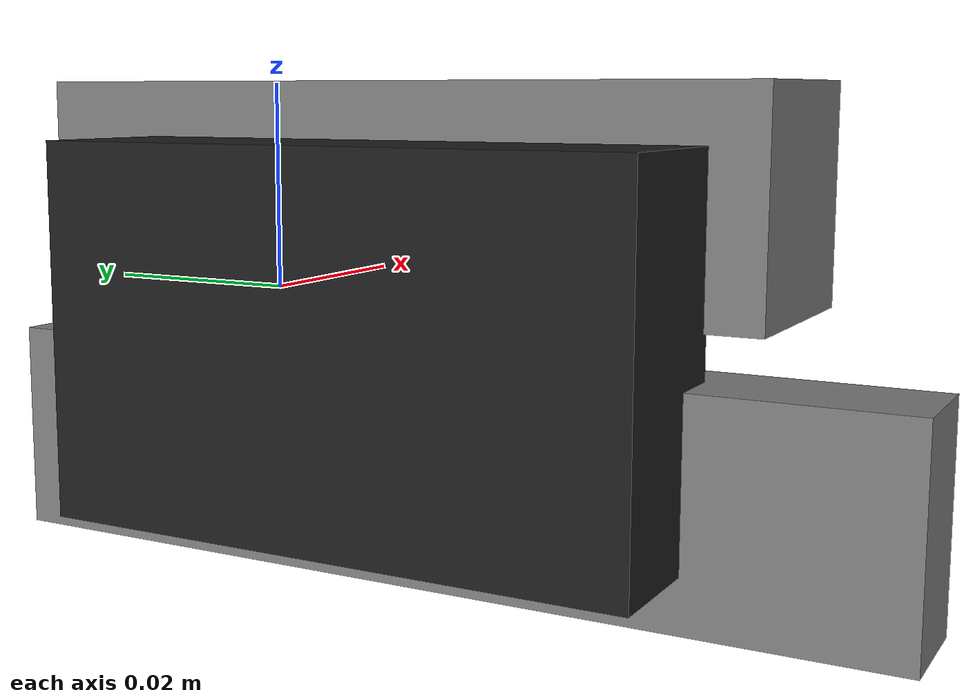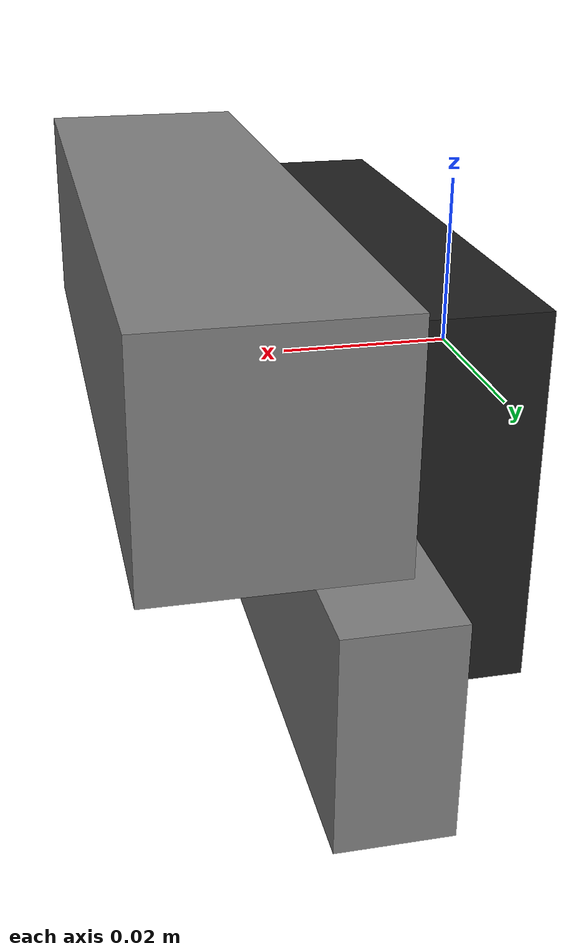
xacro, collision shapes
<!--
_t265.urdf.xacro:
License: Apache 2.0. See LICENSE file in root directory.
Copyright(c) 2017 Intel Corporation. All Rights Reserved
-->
<?xml version="1.0"?>
<robot name="standalone_d435_t265" xmlns:xacro="http://www.ros.org/wiki/xacro">

  <!-- Mount for the cameras -->
  <xacro:include filename="$(find common_gazebo_models)/urdf/realsense_mount.urdf.xacro" />

  <link name="t265_pose_frame" />

  <joint name="mount_to_t265_pose_frame" type="fixed">
    <parent link="t265_mount_link"></parent>
    <child link="t265_pose_frame"></child>
    <origin xyz="0 0 0" rpy="0 0 0" />
  </joint>

  <!-- Realsense T265 -->
  <xacro:include filename="$(find realsense_simulator)/urdf/_t265.urdf.xacro" />
  <xacro:sensor_t265 name="t265" topics_ns="t265" tf_prefix="t265" parent="t265_mount_link">
    <origin xyz="0 0 0" rpy="0 0 0" />
  </xacro:sensor_t265>

  <!-- Realsense D435i -->
  <xacro:include filename="$(find realsense_simulator)/urdf/_d435.urdf.xacro" />
  <xacro:sensor_d435 name="d435i" topics_ns="d435i" parent="d435_mount_link">
    <origin xyz="0 0 0" rpy="0 0 0" />
  </xacro:sensor_d435>

</robot>

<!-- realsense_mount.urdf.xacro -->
<robot name="realsense_mount" xmlns:xacro="http://www.ros.org/wiki/xacro">

  <xacro:property name="mass" value="0.014" />

  <link name="realsense_mount_link">
      <visual>
          <geometry>
              <mesh filename="package://common_gazebo_models/meshes/realsense_mount/realsense_mount.dae"/>
          </geometry>
      </visual>
      <collision>
          <origin xyz="0.00965 -0.003639 -0.007" rpy="0 0 0"/>
          <geometry>
              <box size="0.0193 0.0683 0.042"/>
          </geometry>
      </collision>
  </link>

  <gazebo reference="realsense_mount_link">
    <material>Gazebo/Black</material>
  </gazebo>

  <link name="d435_mount_link" />
  <link name="t265_mount_link" />

  <joint name="mount_to_d435_joint" type="fixed">
      <parent link="realsense_mount_link" />
      <child link="d435_mount_link" />
      <origin xyz="0.006 0.000997 0.007955" rpy="0 0 0"/>
  </joint>

  <joint name="mount_to_t265_joint" type="fixed">
      <parent link="realsense_mount_link" />
      <child link="t265_mount_link" />
      <origin xyz="0.0193 -0.007104 -0.02175" rpy="0 0 0"/>
  </joint>

</robot>

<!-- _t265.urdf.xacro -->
<robot name="sensor_t265"
  xmlns:xacro="http://ros.org/wiki/xacro">
  <!--File includes-->
  <xacro:include filename="$(find realsense_simulator)/urdf/_t265.gazebo.xacro"/>

  <xacro:macro name="sensor_t265" params="parent name:=camera topics_ns:=camera enable_fisheye:=true tf_prefix *origin">
    <xacro:property name="M_PI" value="3.1415926535897931" />

    <!-- The following values are approximate, and the camera node
     publishing TF values with actual calibrated camera extrinsic values -->
    <xacro:property name="fisheye1_offset_x" value="0.0"/>
    <xacro:property name="fisheye1_offset_y" value="0.032"/>
    <xacro:property name="fisheye1_offset_z" value="0.0"/>

    <xacro:property name="fisheye2_offset_x" value="0.0"/>
    <xacro:property name="fisheye2_offset_y" value="-0.032"/>
    <xacro:property name="fisheye2_offset_z" value="0.0"/>

    <xacro:property name="t265_cam_width" value="0.108"/>
    <xacro:property name="t265_cam_height" value="0.0245"/>
    <xacro:property name="t265_cam_depth" value="0.0125"/>

    <material name="${name}_aluminum">
      <color rgba="0.5 0.5 0.5 1"/>
    </material>

    <!-- camera body, with origin at back screw mount -->
    <joint name="${name}_mount_joint" type="fixed">
      <xacro:insert_block name="origin" />
      <parent link="${parent}"/>
      <child link="${name}_back_screw_mount" />
    </joint>
    <link name="${name}_back_screw_mount"/>

    <joint name="${name}_pose_joint" type="fixed">
      <origin xyz="0 0 0" rpy="0 0 0"/>
      <parent link="${name}_back_screw_mount"/>
      <child link="${name}_link" />
    </joint>

    <link name="${name}_link">
      <visual>
        <origin xyz="0 0 0" rpy="0 0 0"/>
        <geometry>
          <mesh filename="package://realsense_simulator/meshes/t265.stl" />
        </geometry>
        <material name="${name}_aluminum"/>
      </visual>
      <collision>
        <origin xyz="0 0 0" rpy="0 0 0"/>
        <geometry>
          <box size="${t265_cam_depth} ${t265_cam_width} ${t265_cam_height}"/>
        </geometry>
      </collision>
      <inertial>
        <!-- The following are not reliable values, and should not be used for modeling -->
        <mass value="0.068024" />
        <origin xyz="0 0 0" />
        <inertia ixx="0.0000039782" ixy="0.0" ixz="0.000000034641" iyy="0.000065045" iyz="0.0" izz="0.000067499" />
      </inertial>
    </link>

    <joint name="${name}_fisheye1_joint" type="fixed">
      <origin xyz="${fisheye1_offset_x} ${fisheye1_offset_y} ${fisheye1_offset_z}" rpy="0 0 0"/>
      <parent link="${name}_link"/>
      <child link="${name}_fisheye1_frame" />
    </joint>
    <link name="${name}_fisheye1_frame"/>

    <joint name="${name}_fisheye2_joint" type="fixed">
      <origin xyz="${fisheye2_offset_x} ${fisheye2_offset_y} ${fisheye2_offset_z}" rpy="0 0 0"/>
      <parent link="${name}_link"/>
      <child link="${name}_fisheye2_frame" />
    </joint>
    <link name="${name}_fisheye2_frame"/>

    <joint name="${name}_fisheye1_optical_joint" type="fixed">
      <origin xyz="0 0 0" rpy="${3*M_PI/2} 0 -${M_PI/2}"/>
      <parent link="${name}_fisheye1_frame"/>
      <child link="${name}_fisheye1_optical_frame" />
    </joint>
    <link name="${name}_fisheye1_optical_frame"/>

    <joint name="${name}_fisheye2_optical_joint" type="fixed">
      <origin xyz="0 0 0" rpy="${-M_PI/2} 0 -${M_PI/2}"/>
      <parent link="${name}_fisheye2_frame"/>
      <child link="${name}_fisheye2_optical_frame" />
    </joint>
    <link name="${name}_fisheye2_optical_frame"/>

    <joint name="${name}_accel_joint" type="fixed">
      <origin xyz="0 0.021 0" rpy="0 0 ${M_PI}"/>
      <parent link="${name}_link"/>
      <child link="${name}_accel_frame" />
    </joint>
    <link name="${name}_accel_frame"/>

    <joint name="${name}_accel_optical_joint" type="fixed">
      <origin xyz="0 0 0" rpy="${M_PI/2} 0 -${M_PI/2}"/>
      <parent link="${name}_accel_frame"/>
      <child link="${name}_accel_optical_frame" />
    </joint>
    <link name="${name}_accel_optical_frame"/>

    <joint name="${name}_gyro_joint" type="fixed">
      <origin xyz="0 0.021 0" rpy="0 0 ${M_PI}"/>
      <parent link="${name}_link"/>
      <child link="${name}_gyro_frame" />
    </joint>
    <link name="${name}_gyro_frame"/>

    <joint name="${name}_gyro_optical_joint" type="fixed">
      <origin xyz="0 0 0" rpy="${M_PI/2} 0 -${M_PI/2}"/>
      <parent link="${name}_gyro_frame"/>
      <child link="${name}_gyro_optical_frame" />
    </joint>
    <link name="${name}_gyro_optical_frame"/>

    <!-- Realsense Gazebo Plugin -->
    <xacro:gazebo_t265 camera_name="${name}" tf_prefix="${tf_prefix}" enable_fisheye="${enable_fisheye}" fisheye1_reference_link="${name}_fisheye1_frame" fisheye2_reference_link="${name}_fisheye2_frame" topics_ns="${topics_ns}" fisheye1_optical_frame="${name}_fisheye1_optical_frame" fisheye2_optical_frame="${name}_fisheye2_optical_frame"/>

  </xacro:macro>

</robot>

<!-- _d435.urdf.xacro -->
<robot name="sensor_d435" xmlns:xacro="http://ros.org/wiki/xacro">
  <!--File includes-->
  <xacro:include filename="$(find realsense_simulator)/urdf/_d435.gazebo.xacro"/>

  <xacro:macro name="sensor_d435" params="name:=camera topics_ns:=camera parent *origin">
    <xacro:property name="M_PI" value="3.1415926535897931" />

    <!-- The following values are approximate, and the camera node
     publishing TF values with actual calibrated camera extrinsic values -->
    <xacro:property name="d435_cam_link_to_infra1_offset" value="0.0"/>
    <xacro:property name="d435_cam_link_to_infra2_offset" value="-0.050"/>
    <xacro:property name="d435_cam_link_to_color_offset" value="0.015"/>

    <!-- The following values model the aluminum peripherial case for the
  	D435 camera, with the camera joint represented by the actual
  	peripherial camera tripod mount -->
    <xacro:property name="d435_cam_width" value="0.090"/>
    <xacro:property name="d435_cam_height" value="0.025"/>
    <xacro:property name="d435_cam_depth" value="0.02505"/>
    <xacro:property name="d435_cam_mount_from_center_offset" value="0.0149"/>

    <!-- The following offset is relative the the physical D435 camera peripherial
  	camera tripod mount -->
    <xacro:property name="d435_cam_depth_px" value="${d435_cam_mount_from_center_offset}"/>
    <xacro:property name="d435_cam_depth_py" value="0.0175"/>
    <xacro:property name="d435_cam_depth_pz" value="${d435_cam_height/2}"/>

    <material name="${name}_aluminum">
	  <color rgba="0.5 0.5 0.5 1"/>
    </material>

    <!-- camera body, with origin at back screw mount -->
    <joint name="${name}_joint" type="fixed">
      <xacro:insert_block name="origin" />
      <parent link="${parent}"/>
      <child link="${name}_back_screw_frame" />
    </joint>
    <link name="${name}_back_screw_frame"/>

    <joint name="${name}_link_joint" type="fixed">
      <origin xyz="${d435_cam_depth} 0 0" rpy="0 0 0"/>
      <parent link="${name}_back_screw_frame"/>
      <child link="${name}_link" />
    </joint>

    <link name="${name}_link">
      <visual>
      <origin xyz="0 0 0" rpy="${M_PI/2} 0 ${M_PI/2}"/>
        <geometry>
          <mesh filename="package://realsense_simulator/meshes/d435.dae" />
        </geometry>
        <material name="${name}_aluminum"/>
      </visual>
      <collision>
        <origin xyz="0 0 0" rpy="0 0 0"/>
        <geometry>
        <box size="${d435_cam_depth} ${d435_cam_width} ${d435_cam_height}"/>
        </geometry>
      </collision>
      <inertial>
        <!-- The following are not reliable values, and should not be used for modeling -->
        <mass value="0.564" />
        <origin xyz="0 0 0" />
        <inertia ixx="0.003881243" ixy="0.0" ixz="0.0" iyy="0.000498940" iyz="0.0" izz="0.003879257" />
      </inertial>
    </link>

    <!-- camera depth joints and links -->
    <joint name="${name}_depth_joint" type="fixed">
      <origin xyz="0 0 0" rpy="0 0 0"/>
      <parent link="${name}_link"/>
      <child link="${name}_depth_frame" />
    </joint>
    <link name="${name}_depth_frame"/>

    <joint name="${name}_depth_optical_joint" type="fixed">
      <origin xyz="0 0 0" rpy="${-M_PI/2} 0 ${-M_PI/2}" />
      <parent link="${name}_depth_frame" />
      <child link="${name}_depth_optical_frame" />
    </joint>
    <link name="${name}_depth_optical_frame"/>

    <!-- camera left IR joints and links -->
    <joint name="${name}_infra1_joint" type="fixed">
      <origin xyz="0 ${d435_cam_link_to_infra1_offset} 0" rpy="0 0 0" />
      <parent link="${name}_link" />
      <child link="${name}_infra1_frame" />
    </joint>
    <link name="${name}_infra1_frame"/>

    <joint name="${name}_infra1_optical_joint" type="fixed">
      <origin xyz="0 0 0" rpy="${-M_PI/2} 0 ${-M_PI/2}" />
      <parent link="${name}_infra1_frame" />
      <child link="${name}_infra1_optical_frame" />
    </joint>
    <link name="${name}_infra1_optical_frame"/>

    <!-- camera right IR joints and links -->
    <joint name="${name}_infra2_joint" type="fixed">
      <origin xyz="0 ${d435_cam_link_to_infra2_offset} 0" rpy="0 0 0" />
      <parent link="${name}_link" />
      <child link="${name}_infra2_frame" />
    </joint>
    <link name="${name}_infra2_frame"/>

    <joint name="${name}_infra2_optical_joint" type="fixed">
      <origin xyz="0 0 0" rpy="${-M_PI/2} 0 ${-M_PI/2}" />
      <parent link="${name}_infra2_frame" />
      <child link="${name}_infra2_optical_frame" />
    </joint>
    <link name="${name}_infra2_optical_frame"/>

    <!-- camera color joints and links -->
    <joint name="${name}_color_joint" type="fixed">
      <origin xyz="0 ${d435_cam_link_to_color_offset} 0" rpy="0 0 0" />
      <parent link="${name}_link" />
      <child link="${name}_color_frame" />
    </joint>
    <link name="${name}_color_frame"/>

    <joint name="${name}_color_optical_joint" type="fixed">
      <origin xyz="0 0 0" rpy="${-M_PI/2} 0 ${-M_PI/2}" />
      <parent link="${name}_color_frame" />
      <child link="${name}_color_optical_frame" />
    </joint>
    <link name="${name}_color_optical_frame"/>

    <!-- Realsense Gazebo Plugin -->
    <xacro:gazebo_d435 camera_name="${name}" reference_link="${name}_link" topics_ns="${topics_ns}" depth_optical_frame="${name}_depth_optical_frame" color_optical_frame="${name}_color_optical_frame" infrared1_optical_frame="${name}_left_ir_optical_frame" infrared2_optical_frame="${name}_right_ir_optical_frame"/>

  </xacro:macro>
</robot>
